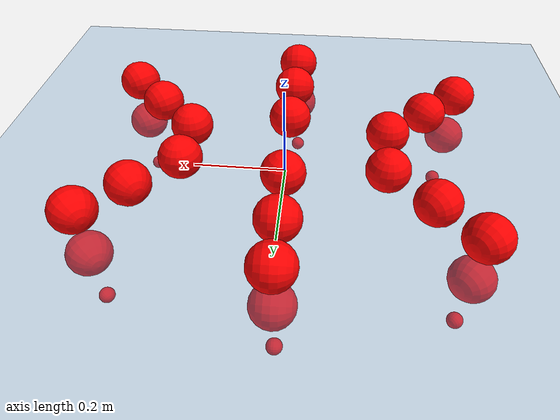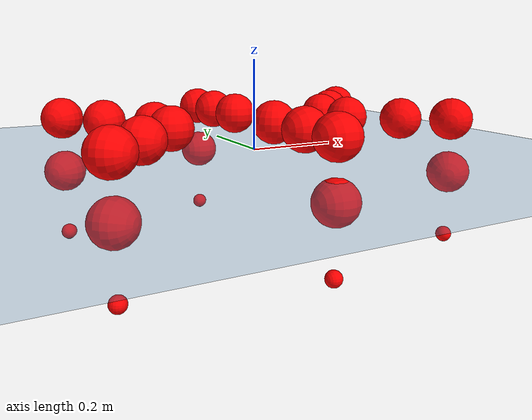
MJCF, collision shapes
<mujoco model="Golem">
  <compiler angle="radian" assetdir="assets" balanceinertia="true" inertiafromgeom="false"/>

  <option timestep="0.005" density="1.2" viscosity="2e-05"/>

  <size nkey="1"/>

  <visual>
    <quality shadowsize="8192"/>
    <map shadowclip="0.5"/>
  </visual>

  <default>
    <default class="/">
      <joint armature="0.01" damping="0.01" frictionloss="0.01"/>
      <geom contype="0" conaffinity="0" group="1" solref="-1000 -80"/>
      <site size="0.01 0.005 0.005" group="5"/>
      <general forcelimited="true" biastype="affine" gainprm="25" biasprm="0 -25 -0.5"/>
      <default class="visual">
        <geom type="mesh" group="2"/>
      </default>
      <default class="collision">
        <geom group="3"/>
      </default>
      <default class="foot">
        <geom size="0.01 0 0" condim="6" group="4" priority="1" solimp="0.015 1 0.01"/>
      </default>
      <default class="reward_collision_sphere">
        <geom group="5" rgba="1 0 0 1"/>
      </default>
    </default>
  </default>

  <asset>
    <texture type="skybox" colorspace="auto" name="//unnamed_texture_0" builtin="gradient" rgb1="0.95 0.95 0.95" rgb2="0.95 0.95 0.95" width="100" height="600"/>
    <texture type="2d" colorspace="auto" name="texplane" builtin="checker" rgb1="0.345 0.575 0.748" rgb2="0.345 0.575 0.748" markrgb="1 1 1" width="512" height="512"/>
    <material name="MatPlane" class="/" texture="texplane" texuniform="true" texrepeat="2 2" specular="0.9"/>
    <mesh name="body" class="/" file="body.stl" scale="0.001 0.001 0.001"/>
    <mesh name="coxa" class="/" file="coxa.stl" scale="0.001 0.001 0.001"/>
    <mesh name="femur" class="/" file="femur.stl" scale="0.001 0.001 0.001"/>
    <mesh name="tibia" class="/" file="tibia.stl" scale="0.001 0.001 0.001"/>
    <mesh name="tarsus" class="/" file="tarsus.stl" scale="0.001 0.001 0.001"/>
  </asset>

  <worldbody>
    <geom name="floor" class="/" size="100 100 0.125" type="plane" group="0" material="MatPlane"/>
    <light name="toplight_shadow" class="/" pos="0 0 5" dir="0.0990148 0.0990148 -0.990148" type="directional" ambient="0.04 0.04 0.04" diffuse="0.55 0.55 0.55" specular="0.12 0.12 0.12"/>
    <light name="toplight_fill" class="/" pos="0 0 5" dir="0.0990148 0.0990148 -0.990148" type="directional" castshadow="false" ambient="0.04 0.04 0.04" diffuse="0.3 0.3 0.3" specular="0.08 0.08 0.08"/>
    <body name="trunk" pos="-0.0025599 -0.00273177 0.000800593" quat="0.999999 -0.000380663 0.00111697 -0.000653905">
      <inertial pos="0.00292123 -6.68959e-05 -0.000371143" quat="0.999909 0.00491444 0.00524491 -0.011412" mass="5.81345" diaginertia="0.0461855 0.0110706 0.0153472"/>
      <joint name="//unnamed_joint_0" type="free"/>
      <geom name="//unnamed_geom_1" class="/" pos="0 0 0.0688768" quat="1 0 0 0" type="mesh" rgba="0.9 0.9 0.9 1" mesh="body"/>
      <site name="imu" class="/" pos="0.18365 0.0128368 0.108889" size="0.0114652"/>
      <camera name="track" class="/" pos="0 -2.02262 0" quat="0.707107 0.707107 0 0" mode="trackcom"/>
      <camera name="ego_camera" class="/" pos="0.175766 0 0.10762" quat="-0.5 -0.5 0.5 0.5"/>
      <body name="coxa_RR" pos="-0.24267 -0.0854968 0.0704348" quat="0.382593 0.000564178 -0.000844831 -0.923917">
        <inertial pos="-0.000219697 0.000257078 0.00242755" quat="0.999999 0.00112846 0.000175742 0.000126742" mass="0.307431" diaginertia="0.0445969 0.010683 0.0149095"/>
        <joint name="coxa_joint_RR" class="/" pos="0 0 0" axis="-0.000344455 0.00412877 -0.999991" range="-3.13104 3.08605" armature="0.011203" damping="0.00565094" frictionloss="0.0118464"/>
        <geom name="//unnamed_geom_2" class="/" type="mesh" rgba="0.2 0.2 0.2 1" mesh="coxa"/>
        <geom name="//unnamed_geom_3" class="reward_collision_sphere" size="0.0458608" pos="-0.0405615 0 0"/>
        <body name="femur_RR" pos="0.0819655 -0.000553481 -0.00381659" quat="0.499882 -0.499623 0.500467 0.500029">
          <inertial pos="6.01313e-05 0.000222563 0.00101283" quat="0.999998 -0.000906688 -0.000494524 0.00171165" mass="0.295477" diaginertia="0.0446166 0.0104715 0.0141868"/>
          <joint name="femur_joint_RR" class="/" pos="0 0 0" axis="0.0121455 -0.00489587 -0.999914" range="-3.17643 3.12929" armature="0.0120782" damping="0.0222725" frictionloss="0.0116832"/>
          <geom name="//unnamed_geom_4" class="/" type="mesh" rgba="0.9 0.9 0.9 1" mesh="femur"/>
          <geom name="//unnamed_geom_5" class="reward_collision_sphere" size="0.0458608"/>
          <body name="tibia_RR" pos="0.00125496 -0.110197 0.000469277" quat="0.000327742 1 5.44852e-05 -6.80517e-05">
            <inertial pos="-0.000443503 0.000515601 -0.00131691" quat="0.999906 -0.00678132 0.00375083 -0.0113101" mass="0.305824" diaginertia="0.0438575 0.0106766 0.0142439"/>
            <joint name="tibia_joint_RR" class="/" pos="0 0 0" axis="-0.00896211 0.00363463 0.999953" range="-3.19392 3.13258" armature="0.00992655" damping="0" frictionloss="0.0103232"/>
            <geom name="//unnamed_geom_6" class="/" type="mesh" rgba="0.2 0.2 0.2 1" mesh="tibia"/>
            <geom name="//unnamed_geom_7" class="reward_collision_sphere" size="0.0458608"/>
            <body name="tarsus_RR" pos="0.118821 0.00269085 -0.00109034" quat="1 0.000216189 3.15489e-05 -5.0462e-05">
              <inertial pos="0.0795173 7.21246e-05 -0.00110606" quat="0.500923 0.49839 0.500052 0.500632" mass="0.287159" diaginertia="0.0452027 0.0101156 0.014165"/>
              <joint name="tarsus_joint_RR" class="/" pos="0 0 0" axis="0.00140236 -0.00330956 0.999994" stiffness="0.000315357" range="-3.12171 3.087" armature="0.00991404" damping="0.0417881" frictionloss="0.0125243"/>
              <geom name="//unnamed_geom_8" class="/" type="mesh" rgba="0.9 0.9 0.9 1" mesh="tarsus"/>
              <geom name="foot_1" class="foot" size="0.0112279" pos="0.15143 0 0" quat="0 -0.707107 0 0.707107"/>
              <geom name="//unnamed_geom_10" class="reward_collision_sphere" size="0.0458608"/>
              <geom name="//unnamed_geom_11" class="reward_collision_sphere" size="0.0171978" pos="0.145345 0 0"/>
              <site name="foot_1" class="foot" pos="0.15143 0 0" quat="0 -0.707107 0 0.707107" size="0.0114652"/>
            </body>
          </body>
        </body>
      </body>
      <body name="coxa_RM" pos="-0.000860777 -0.133347 0.0737082" quat="0.707036 -3.92348e-05 0.00011945 -0.707178">
        <inertial pos="-0.00166265 -0.000617239 -0.000639888" quat="0.999943 0.00841337 -0.00655885 0.000730908" mass="0.300843" diaginertia="0.0439584 0.0105695 0.0138046"/>
        <joint name="coxa_joint_RM" class="/" pos="0 0 0" axis="0.00670968 0.00299642 -0.999973" stiffness="0.0063928" range="-3.15826 3.14396" armature="0.0115545" damping="0.0128712" frictionloss="0.00991898"/>
        <geom name="//unnamed_geom_12" class="/" type="mesh" rgba="0.2 0.2 0.2 1" mesh="coxa"/>
        <geom name="//unnamed_geom_13" class="reward_collision_sphere" size="0.0458608" pos="-0.0405615 0 0"/>
        <body name="femur_RM" pos="0.0811907 -0.000916968 0.00151364" quat="0.499941 -0.5003 0.499012 0.500745">
          <inertial pos="0.000445253 -6.64392e-06 -8.72405e-05" quat="1 -0.000293963 0.000154702 0.000258434" mass="0.295111" diaginertia="0.0459667 0.0103121 0.0143142"/>
          <joint name="femur_joint_RM" class="/" pos="0 0 0" axis="-0.00122534 0.00811158 -0.999966" range="-3.15846 3.13179" armature="0.0127929" damping="0.0238587" frictionloss="0.0117347"/>
          <geom name="//unnamed_geom_14" class="/" type="mesh" rgba="0.9 0.9 0.9 1" mesh="femur"/>
          <geom name="//unnamed_geom_15" class="reward_collision_sphere" size="0.0458608"/>
          <body name="tibia_RM" pos="-0.00191075 -0.108134 -0.00103677" quat="-3.51489e-05 1 -2.00737e-05 -0.000312784">
            <inertial pos="0.000233782 0.00280714 -0.00268936" quat="0.999998 -0.00174567 -0.000679439 0.00065577" mass="0.31792" diaginertia="0.0471513 0.0104785 0.0147131"/>
            <joint name="tibia_joint_RM" class="/" pos="0 0 0" axis="0.0022718 -0.0114229 0.999932" range="-3.16015 3.08732" armature="0.0117418" damping="0.0122294" frictionloss="0.0100257"/>
            <geom name="//unnamed_geom_16" class="/" type="mesh" rgba="0.2 0.2 0.2 1" mesh="tibia"/>
            <geom name="//unnamed_geom_17" class="reward_collision_sphere" size="0.0458608"/>
            <body name="tarsus_RM" pos="0.119442 0.00191523 0.00106706" quat="1 0.000457682 -0.000323224 2.16841e-05">
              <inertial pos="0.0806005 -0.00156759 0.000861003" quat="0.497212 0.50105 0.497658 0.504049" mass="0.307224" diaginertia="0.0457691 0.0108695 0.0152244"/>
              <joint name="tarsus_joint_RM" class="/" pos="0 0 0" axis="-0.00701619 -0.00771317 0.999946" stiffness="0.00355095" range="-3.15681 3.13437" armature="0.0113814" damping="0.0071783" frictionloss="0.0109928"/>
              <geom name="//unnamed_geom_18" class="/" type="mesh" rgba="0.9 0.9 0.9 1" mesh="tarsus"/>
              <geom name="foot_2" class="foot" size="0.011228" pos="0.15143 0 0" quat="0 -0.707107 0 0.707107"/>
              <geom name="//unnamed_geom_20" class="reward_collision_sphere" size="0.0458608"/>
              <geom name="//unnamed_geom_21" class="reward_collision_sphere" size="0.0171978" pos="0.145345 0 0"/>
              <site name="foot_2" class="foot" pos="0.15143 0 0" quat="0 -0.707107 0 0.707107" size="0.0114652"/>
            </body>
          </body>
        </body>
      </body>
      <body name="coxa_RF" pos="0.241209 -0.0831672 0.0680208" quat="0.923895 -0.000112533 0.000343319 -0.382647">
        <inertial pos="0.000721928 0.000887676 -0.000857369" quat="0.999972 -0.00489793 0.00556594 -0.000695721" mass="0.305334" diaginertia="0.0482113 0.01085 0.0148082"/>
        <joint name="coxa_joint_RF" class="/" pos="0 0 0" axis="-0.00164995 0.000605261 -0.999998" range="-3.19262 3.1319" armature="0.0125817" damping="0.0113178" frictionloss="0.0101746"/>
        <geom name="//unnamed_geom_22" class="/" type="mesh" rgba="0.2 0.2 0.2 1" mesh="coxa"/>
        <geom name="//unnamed_geom_23" class="reward_collision_sphere" size="0.0458608" pos="-0.0405615 0 0"/>
        <body name="femur_RF" pos="0.0803071 0.00161997 0.000645725" quat="0.499857 -0.500125 0.499288 0.500729">
          <inertial pos="0.00278259 -8.39431e-05 0.00278851" quat="0.999994 0.00112362 -0.00329265 -0.000906675" mass="0.293783" diaginertia="0.0469309 0.010434 0.0145749"/>
          <joint name="femur_joint_RF" class="/" pos="0 0 0" axis="0.00960252 -0.00990219 -0.999905" stiffness="0.00364653" range="-3.12904 3.08761" armature="0.0116721" damping="0.0133802" frictionloss="0.0105394"/>
          <geom name="//unnamed_geom_24" class="/" type="mesh" rgba="0.9 0.9 0.9 1" mesh="femur"/>
          <geom name="//unnamed_geom_25" class="reward_collision_sphere" size="0.0458608"/>
          <body name="tibia_RF" pos="-0.00305288 -0.108099 0.00138913" quat="-0.000318038 1 9.31169e-05 -0.000245581">
            <inertial pos="-0.000329994 -0.00178026 0.000813008" quat="0.999905 -0.00188402 0.00803263 0.0110827" mass="0.309502" diaginertia="0.0451191 0.0104579 0.0142748"/>
            <joint name="tibia_joint_RF" class="/" pos="0 0 0" axis="-0.00444063 0.00133317 0.999989" range="-3.15791 3.09239" armature="0.0116672" damping="0.0270249" frictionloss="0.0109143"/>
            <geom name="//unnamed_geom_26" class="/" type="mesh" rgba="0.2 0.2 0.2 1" mesh="tibia"/>
            <geom name="//unnamed_geom_27" class="reward_collision_sphere" size="0.0458608"/>
            <body name="tarsus_RF" pos="0.118501 0.000808256 -0.000929807" quat="0.999999 -0.00124105 -0.000289408 -0.000263597">
              <inertial pos="0.0818401 -7.07047e-05 0.0013349" quat="0.496543 0.504787 0.498034 0.500597" mass="0.308498" diaginertia="0.0464291 0.0104546 0.0140387"/>
              <joint name="tarsus_joint_RF" class="/" pos="0 0 0" axis="0.00486381 -0.00469212 0.999977" range="-3.19693 3.14671" armature="0.0125624" damping="0.00384188" frictionloss="0.0110129"/>
              <geom name="//unnamed_geom_28" class="/" type="mesh" rgba="0.9 0.9 0.9 1" mesh="tarsus"/>
              <geom name="foot_3" class="foot" size="0.0116657" pos="0.15143 0 0" quat="0 -0.707107 0 0.707107"/>
              <geom name="//unnamed_geom_30" class="reward_collision_sphere" size="0.0458608"/>
              <geom name="//unnamed_geom_31" class="reward_collision_sphere" size="0.0171978" pos="0.145345 0 0"/>
              <site name="foot_3" class="foot" pos="0.15143 0 0" quat="0 -0.707107 0 0.707107" size="0.0114652"/>
            </body>
          </body>
        </body>
      </body>
      <body name="coxa_LR" pos="-0.238522 0.0873418 0.0660103" quat="0.382422 -4.94884e-05 0.000334576 0.923988">
        <inertial pos="-7.50194e-05 0.00130386 0.000524026" quat="0.999951 -5.00439e-05 0.000541302 0.00990241" mass="0.300638" diaginertia="0.0458643 0.0107115 0.0148789"/>
        <joint name="coxa_joint_LR" class="/" pos="0 0 0" axis="0.0012846 0.00213244 -0.999997" stiffness="0.00981772" range="-3.17837 3.1287" armature="0.0126598" damping="0.0104443" frictionloss="0.0117369"/>
        <geom name="//unnamed_geom_32" class="/" type="mesh" rgba="0.2 0.2 0.2 1" mesh="coxa"/>
        <geom name="//unnamed_geom_33" class="reward_collision_sphere" size="0.0458608" pos="-0.0405615 0 0"/>
        <body name="femur_LR" pos="0.0807669 0.00201278 0.000452894" quat="0.49978 -0.500063 0.499899 0.500258">
          <inertial pos="0.00108345 0.000583751 0.000435186" quat="0.999905 -0.0132504 -0.00061308 0.00386735" mass="0.291264" diaginertia="0.0421708 0.010105 0.0138145"/>
          <joint name="femur_joint_LR" class="/" pos="0 0 0" axis="-0.00596108 -0.00778963 0.999952" range="-3.16121 3.09897" armature="0.0127812" damping="0.00181202" frictionloss="0.0103145"/>
          <geom name="//unnamed_geom_34" class="/" type="mesh" rgba="0.9 0.9 0.9 1" mesh="femur"/>
          <geom name="//unnamed_geom_35" class="reward_collision_sphere" size="0.0458608"/>
          <body name="tibia_LR" pos="-0.000530497 -0.109868 -0.00282402" quat="0.000612983 0.999999 0.000418807 -0.00070907">
            <inertial pos="0.00263552 0.00021737 1.60173e-06" quat="0.999958 0.00195123 0.0089002 -0.000860271" mass="0.295927" diaginertia="0.0452575 0.010914 0.014693"/>
            <joint name="tibia_joint_LR" class="/" pos="0 0 0" axis="0.00654761 0.00544905 -0.999964" stiffness="0.00688434" range="-3.13579 3.13085" armature="0.0127997" damping="0.0116448" frictionloss="0.0130526"/>
            <geom name="//unnamed_geom_36" class="/" type="mesh" rgba="0.2 0.2 0.2 1" mesh="tibia"/>
            <geom name="//unnamed_geom_37" class="reward_collision_sphere" size="0.0458608"/>
            <body name="tarsus_LR" pos="0.120845 -0.00113291 -0.00239393" quat="0.999999 0.00111216 8.63831e-05 -0.00073463">
              <inertial pos="0.0787238 -0.00246005 -0.00238716" quat="0.491693 0.501727 0.496213 0.510178" mass="0.307489" diaginertia="0.0457352 0.0107316 0.0146853"/>
              <joint name="tarsus_joint_LR" class="/" pos="0 0 0" axis="-0.000597117 -0.000398342 -1" stiffness="0.00732429" range="-3.15185 3.12088" armature="0.0117275" damping="0.0286981" frictionloss="0.0101136"/>
              <geom name="//unnamed_geom_38" class="/" type="mesh" rgba="0.9 0.9 0.9 1" mesh="tarsus"/>
              <geom name="foot_4" class="foot" size="0.0121362" pos="0.15143 0 0" quat="0.707107 0 -0.707107 0"/>
              <geom name="//unnamed_geom_40" class="reward_collision_sphere" size="0.0458608"/>
              <geom name="//unnamed_geom_41" class="reward_collision_sphere" size="0.0171978" pos="0.145345 0 0"/>
              <site name="foot_4" class="foot" pos="0.15143 0 0" quat="0.707107 0 -0.707107 0" size="0.0114652"/>
            </body>
          </body>
        </body>
      </body>
      <body name="coxa_LM" pos="-0.00267967 0.131138 0.07195" quat="0.707541 0.000192348 -0.000120961 0.706672">
        <inertial pos="0.00158298 -0.000858994 -0.00239479" quat="0.999968 -2.7622e-05 0.00165533 -0.00777394" mass="0.302085" diaginertia="0.045712 0.0109747 0.0150901"/>
        <joint name="coxa_joint_LM" class="/" pos="0 0 0" axis="0.000537137 0.000899512 -0.999999" range="-3.12566 3.13689" armature="0.0109248" damping="0" frictionloss="0.0127148"/>
        <geom name="//unnamed_geom_42" class="/" type="mesh" rgba="0.2 0.2 0.2 1" mesh="coxa"/>
        <geom name="//unnamed_geom_43" class="reward_collision_sphere" size="0.0458608" pos="-0.0405615 0 0"/>
        <body name="femur_LM" pos="0.079075 0.00164836 -0.00230494" quat="0.499756 -0.500952 0.499527 0.499764">
          <inertial pos="-0.00163467 0.000209165 -0.000777984" quat="0.999906 0.00300873 0.0133189 0.000809455" mass="0.314168" diaginertia="0.0458349 0.0108646 0.0148316"/>
          <joint name="femur_joint_LM" class="/" pos="0 0 0" axis="0.000472543 0.00427771 0.999991" range="-3.08699 3.1757" armature="0.0130566" damping="0" frictionloss="0.0113025"/>
          <geom name="//unnamed_geom_44" class="/" type="mesh" rgba="0.9 0.9 0.9 1" mesh="femur"/>
          <geom name="//unnamed_geom_45" class="reward_collision_sphere" size="0.0458608"/>
          <body name="tibia_LM" pos="0.00297532 -0.104356 0.000838595" quat="0.000545728 1 -0.000313527 0.000435253">
            <inertial pos="-5.58982e-05 -0.000675252 -0.00102851" quat="1 0.000306404 -0.000499731 0.000747956" mass="0.304282" diaginertia="0.0441519 0.0105744 0.0150157"/>
            <joint name="tibia_joint_LM" class="/" pos="0 0 0" axis="0.0121263 -0.00518248 -0.999913" range="-3.10127 3.13892" armature="0.0129204" damping="0.0102598" frictionloss="0.0102967"/>
            <geom name="//unnamed_geom_46" class="/" type="mesh" rgba="0.2 0.2 0.2 1" mesh="tibia"/>
            <geom name="//unnamed_geom_47" class="reward_collision_sphere" size="0.0458608"/>
            <body name="tarsus_LM" pos="0.11638 -0.00159125 0.00164472" quat="0.999999 -0.000196685 0.000253023 0.00133203">
              <inertial pos="0.0836484 0.00225518 0.00268798" quat="0.501334 0.500424 0.498919 0.49932" mass="0.300597" diaginertia="0.0448263 0.0103522 0.0139087"/>
              <joint name="tarsus_joint_LM" class="/" pos="0 0 0" axis="0.00453326 0.00625966 -0.99997" stiffness="0.00399083" range="-3.10825 3.13728" armature="0.0113222" damping="0.0171258" frictionloss="0.0117494"/>
              <geom name="//unnamed_geom_48" class="/" type="mesh" rgba="0.9 0.9 0.9 1" mesh="tarsus"/>
              <geom name="foot_5" class="foot" size="0.0116628" pos="0.15143 0 0" quat="0.707107 0 -0.707107 0"/>
              <geom name="//unnamed_geom_50" class="reward_collision_sphere" size="0.0458608"/>
              <geom name="//unnamed_geom_51" class="reward_collision_sphere" size="0.0171978" pos="0.145345 0 0"/>
              <site name="foot_5" class="foot" pos="0.15143 0 0" quat="0.707107 0 -0.707107 0" size="0.0114652"/>
            </body>
          </body>
        </body>
      </body>
      <body name="coxa_LF" pos="0.242069 0.0816793 0.06547" quat="0.923887 -0.000228863 -0.000309507 0.382666">
        <inertial pos="-0.000644106 -0.000352296 0.000941266" quat="0.999988 -0.00472981 0.000727756 0.00114241" mass="0.292656" diaginertia="0.0433845 0.0107697 0.0142521"/>
        <joint name="coxa_joint_LF" class="/" pos="0 0 0" axis="-0.0121528 0.00974218 -0.999879" range="-3.13023 3.12524" armature="0.0106913" damping="0.0263459" frictionloss="0.0125942"/>
        <geom name="//unnamed_geom_52" class="/" type="mesh" rgba="0.2 0.2 0.2 1" mesh="coxa"/>
        <geom name="//unnamed_geom_53" class="reward_collision_sphere" size="0.0458608" pos="-0.0405615 0 0"/>
        <body name="femur_LF" pos="0.0780779 0.00200722 -0.000565681" quat="0.500685 -0.49949 0.500047 0.499777">
          <inertial pos="0.00248917 -0.00136134 -0.000922242" quat="0.999985 0.00168179 -0.00106517 -0.00518477" mass="0.299612" diaginertia="0.0436323 0.010412 0.0145397"/>
          <joint name="femur_joint_LF" class="/" pos="0 0 0" axis="0.00686944 0.00461279 0.999966" stiffness="0.0019994" range="-3.13021 3.14068" armature="0.0115561" damping="0" frictionloss="0.012326"/>
          <geom name="//unnamed_geom_54" class="/" type="mesh" rgba="0.9 0.9 0.9 1" mesh="femur"/>
          <geom name="//unnamed_geom_55" class="reward_collision_sphere" size="0.0458608"/>
          <body name="tibia_LF" pos="-0.000526982 -0.111889 0.000671041" quat="-0.000126159 1 -0.000115563 -0.000439635">
            <inertial pos="0.00149946 -0.00026906 0.00016066" quat="0.999998 -0.000403229 0.00184725 -0.000466338" mass="0.304261" diaginertia="0.0435073 0.0105543 0.0139935"/>
            <joint name="tibia_joint_LF" class="/" pos="0 0 0" axis="-0.00484457 -0.00687854 -0.999965" range="-3.16896 3.12273" armature="0.0129068" damping="0" frictionloss="0.011825"/>
            <geom name="//unnamed_geom_56" class="/" type="mesh" rgba="0.2 0.2 0.2 1" mesh="tibia"/>
            <geom name="//unnamed_geom_57" class="reward_collision_sphere" size="0.0458608"/>
            <body name="tarsus_LF" pos="0.12077 0.0023845 -0.00338822" quat="1 0.000177937 -0.00056788 -0.000157672">
              <inertial pos="0.079395 0.000281253 0.000747141" quat="0.500982 0.500454 0.501051 0.497504" mass="0.299062" diaginertia="0.0462984 0.0108345 0.0142174"/>
              <joint name="tarsus_joint_LF" class="/" pos="0 0 0" axis="-0.000558178 -0.00373422 -0.999993" stiffness="0.0289508" range="-3.09226 3.10873" armature="0.0128584" damping="0.0276306" frictionloss="0.013068"/>
              <geom name="//unnamed_geom_58" class="/" type="mesh" rgba="0.9 0.9 0.9 1" mesh="tarsus"/>
              <geom name="foot_6" class="foot" size="0.0108217" pos="0.15143 0 0" quat="0.707107 0 -0.707107 0"/>
              <geom name="//unnamed_geom_60" class="reward_collision_sphere" size="0.0458608"/>
              <geom name="//unnamed_geom_61" class="reward_collision_sphere" size="0.0171978" pos="0.145345 0 0"/>
              <site name="foot_6" class="foot" pos="0.15143 0 0" quat="0.707107 0 -0.707107 0" size="0.0114652"/>
            </body>
          </body>
        </body>
      </body>
    </body>
  </worldbody>

  <contact>
    <pair class="/" geom1="floor" geom2="foot_1" name="//unnamed_contact_0"/>
    <pair class="/" geom1="floor" geom2="foot_2" name="//unnamed_contact_1"/>
    <pair class="/" geom1="floor" geom2="foot_3" name="//unnamed_contact_2"/>
    <pair class="/" geom1="floor" geom2="foot_4" name="//unnamed_contact_3"/>
    <pair class="/" geom1="floor" geom2="foot_5" name="//unnamed_contact_4"/>
    <pair class="/" geom1="floor" geom2="foot_6" name="//unnamed_contact_5"/>
  </contact>

  <actuator>
    <general name="coxa_joint_RR" class="/" joint="coxa_joint_RR" forcerange="-8.32849 8.32849" gainprm="27.6506" biasprm="0 -27.6506 -0.546102"/>
    <general name="femur_joint_RR" class="/" joint="femur_joint_RR" forcerange="-9.23952 9.23952" gainprm="27.6506" biasprm="0 -27.6506 -0.546102"/>
    <general name="tibia_joint_RR" class="/" joint="tibia_joint_RR" forcerange="-8.58221 8.58221" gainprm="27.6506" biasprm="0 -27.6506 -0.546102"/>
    <general name="tarsus_joint_RR" class="/" joint="tarsus_joint_RR" forcerange="-9.24497 9.24497" gainprm="27.6506" biasprm="0 -27.6506 -0.546102"/>
    <general name="coxa_joint_RM" class="/" joint="coxa_joint_RM" forcerange="-8.38538 8.38538" gainprm="27.6506" biasprm="0 -27.6506 -0.546102"/>
    <general name="femur_joint_RM" class="/" joint="femur_joint_RM" forcerange="-8.42901 8.42901" gainprm="27.6506" biasprm="0 -27.6506 -0.546102"/>
    <general name="tibia_joint_RM" class="/" joint="tibia_joint_RM" forcerange="-8.10717 8.10717" gainprm="27.6506" biasprm="0 -27.6506 -0.546102"/>
    <general name="tarsus_joint_RM" class="/" joint="tarsus_joint_RM" forcerange="-8.2524 8.2524" gainprm="27.6506" biasprm="0 -27.6506 -0.546102"/>
    <general name="coxa_joint_RF" class="/" joint="coxa_joint_RF" forcerange="-8.74251 8.74251" gainprm="27.6506" biasprm="0 -27.6506 -0.546102"/>
    <general name="femur_joint_RF" class="/" joint="femur_joint_RF" forcerange="-8.66614 8.66614" gainprm="27.6506" biasprm="0 -27.6506 -0.546102"/>
    <general name="tibia_joint_RF" class="/" joint="tibia_joint_RF" forcerange="-8.48023 8.48023" gainprm="27.6506" biasprm="0 -27.6506 -0.546102"/>
    <general name="tarsus_joint_RF" class="/" joint="tarsus_joint_RF" forcerange="-9.2268 9.2268" gainprm="27.6506" biasprm="0 -27.6506 -0.546102"/>
    <general name="coxa_joint_LR" class="/" joint="coxa_joint_LR" forcerange="-8.32966 8.32966" gainprm="27.6506" biasprm="0 -27.6506 -0.546102"/>
    <general name="femur_joint_LR" class="/" joint="femur_joint_LR" forcerange="-7.85859 7.85859" gainprm="27.6506" biasprm="0 -27.6506 -0.546102"/>
    <general name="tibia_joint_LR" class="/" joint="tibia_joint_LR" forcerange="-7.51629 7.51629" gainprm="27.6506" biasprm="0 -27.6506 -0.546102"/>
    <general name="tarsus_joint_LR" class="/" joint="tarsus_joint_LR" forcerange="-7.58478 7.58478" gainprm="27.6506" biasprm="0 -27.6506 -0.546102"/>
    <general name="coxa_joint_LM" class="/" joint="coxa_joint_LM" forcerange="-7.51592 7.51592" gainprm="27.6506" biasprm="0 -27.6506 -0.546102"/>
    <general name="femur_joint_LM" class="/" joint="femur_joint_LM" forcerange="-7.78536 7.78536" gainprm="27.6506" biasprm="0 -27.6506 -0.546102"/>
    <general name="tibia_joint_LM" class="/" joint="tibia_joint_LM" forcerange="-7.67525 7.67525" gainprm="27.6506" biasprm="0 -27.6506 -0.546102"/>
    <general name="tarsus_joint_LM" class="/" joint="tarsus_joint_LM" forcerange="-8.02395 8.02395" gainprm="27.6506" biasprm="0 -27.6506 -0.546102"/>
    <general name="coxa_joint_LF" class="/" joint="coxa_joint_LF" forcerange="-7.60241 7.60241" gainprm="27.6506" biasprm="0 -27.6506 -0.546102"/>
    <general name="femur_joint_LF" class="/" joint="femur_joint_LF" forcerange="-8.87834 8.87834" gainprm="27.6506" biasprm="0 -27.6506 -0.546102"/>
    <general name="tibia_joint_LF" class="/" joint="tibia_joint_LF" forcerange="-9.14065 9.14065" gainprm="27.6506" biasprm="0 -27.6506 -0.546102"/>
    <general name="tarsus_joint_LF" class="/" joint="tarsus_joint_LF" forcerange="-7.52421 7.52421" gainprm="27.6506" biasprm="0 -27.6506 -0.546102"/>
  </actuator>

  <sensor>
    <gyro site="imu" name="imu_angular_velocity"/>
    <velocimeter site="imu" name="imu_linear_velocity"/>
    <framelinvel objtype="site" objname="foot_1" name="foot_1_global_linear_velocity"/>
    <framelinvel objtype="site" objname="foot_2" name="foot_2_global_linear_velocity"/>
    <framelinvel objtype="site" objname="foot_3" name="foot_3_global_linear_velocity"/>
    <framelinvel objtype="site" objname="foot_4" name="foot_4_global_linear_velocity"/>
    <framelinvel objtype="site" objname="foot_5" name="foot_5_global_linear_velocity"/>
    <framelinvel objtype="site" objname="foot_6" name="foot_6_global_linear_velocity"/>
  </sensor>

  <keyframe>
    <key name="home" qpos="0 0 0.1457 1 0 0 0 0 0 0 0 0 0 0 0 0 0 0 0 0 0 0 0 0 0 0 0 0 0 0 0"/>
  </keyframe>
</mujoco>
